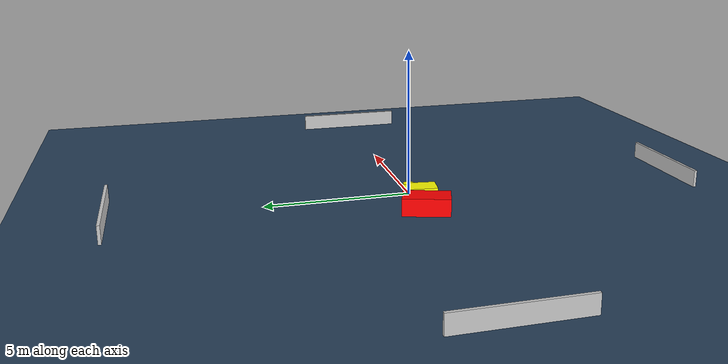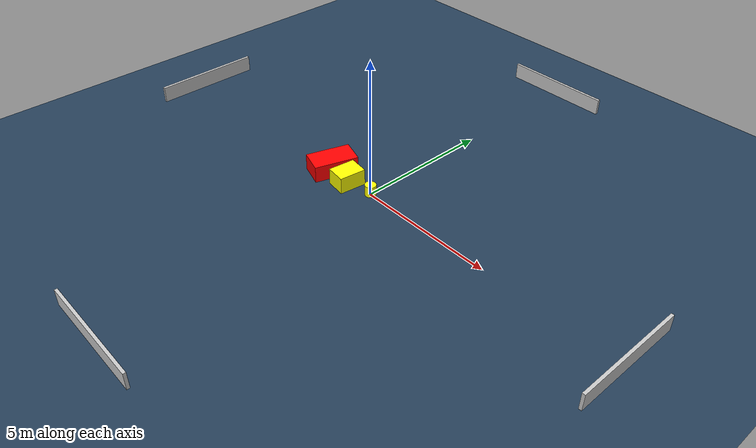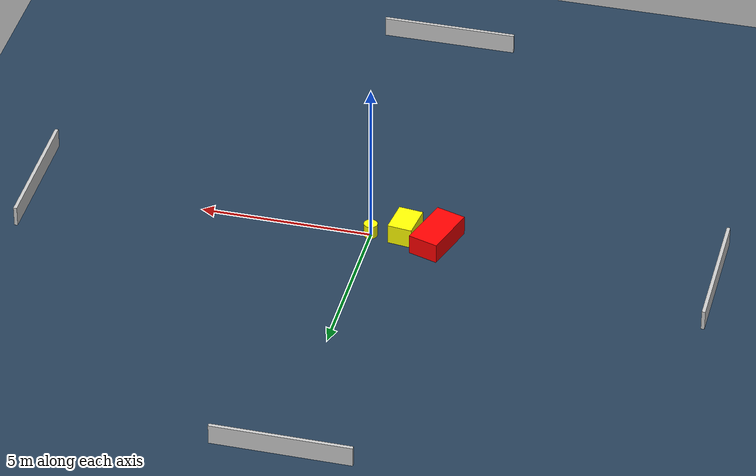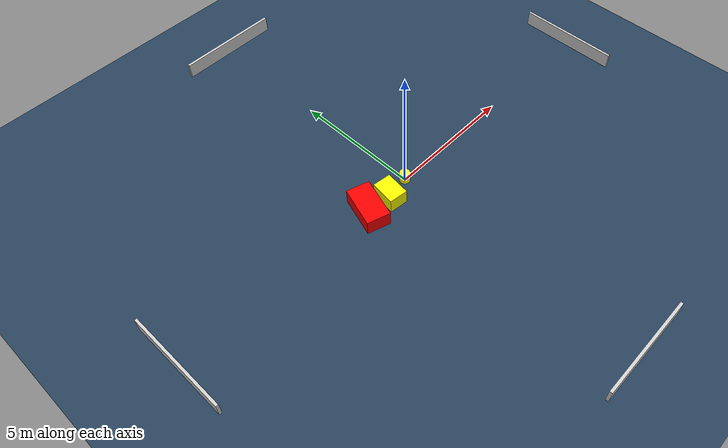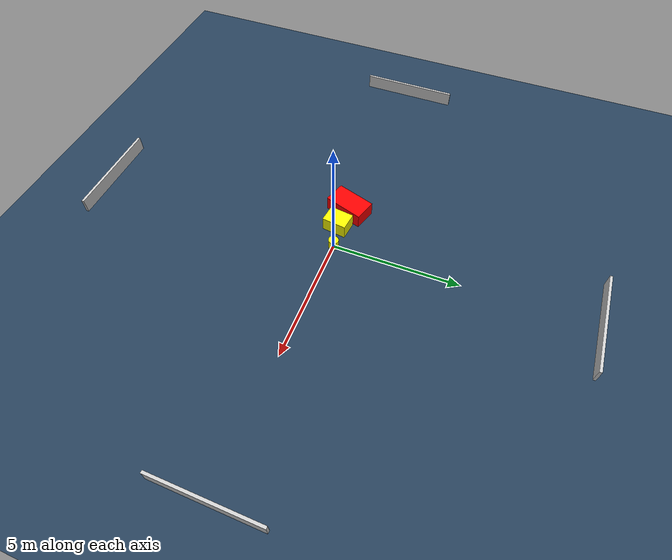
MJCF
<?xml version="1.0" ?>
<mujoco model="generated_environment">
  <option timestep="0.01" integrator="RK4" cone="elliptic"/>
  <default>
    <geom density="1"/>
  </default>
  <asset>
    <texture builtin="gradient" height="3072" name="skybox" rgb1="0.3 0.5 0.7" rgb2="0 0 0" type="skybox" width="512"/>
    <texture builtin="checker" height="300" name="groundplane" rgb1="0.2 0.3 0.4" rgb2="0.1 0.2 0.3" type="2d" width="300"/>
    <material name="groundplane" reflectance="0.2" texrepeat="5 5" texture="groundplane"/>
  </asset>
  <worldbody>
    <light dir="0 0 -1" directional="true" pos="0 0 1.5"/>
    <geom condim="3" friction="0.5 0.005 0.001" material="groundplane" name="floor" pos="0 0 0" size="0 0 0.05" type="plane"/>
    <body name="walls">
      <geom name="wall_1" condim="4" pos="-10.0 0.0 0.3" rgba="0.800000011920929 0.800000011920929 0.800000011920929 1.0" size="0.05 2.0 0.3" type="box"/>
      <geom name="wall_2" condim="4" pos="10.0 0.0 0.3" rgba="0.800000011920929 0.800000011920929 0.800000011920929 1.0" size="0.05 2.0 0.3" type="box"/>
      <geom name="wall_3" condim="4" pos="0.0 -10.0 0.3" rgba="0.800000011920929 0.800000011920929 0.800000011920929 1.0" size="2.0 0.05 0.3" type="box"/>
      <geom name="wall_4" condim="4" pos="0.0 10.0 0.3" rgba="0.800000011920929 0.800000011920929 0.800000011920929 1.0" size="2.0 0.05 0.3" type="box"/>
    </body>
    <body name="robot">
      <joint name="joint_x" type="slide" pos="0 0 0" axis="1 0 0"/>
      <joint name="joint_y" type="slide" pos="0 0 0" axis="0 1 0"/>
      <geom name="robot" type="cylinder" pos="0.0 0.0 0.2" size="0.2 0.2 0.0" mass="5.0" friction="1.0 0.005 0.0001" condim="4" rgba="1.0 1.0 0.0 1.0"/>
    </body>
    <body name="obstacle_1_movable">
      <geom name="obstacle_1_movable" condim="4" pos="-0.9702283586568361 -0.19639650951148516 0.3" euler="0 0 352.90356917778814" friction="0.0 0.005 0.001" rgba="1.0 1.0 0.0 1.0" size="0.35923474401885097 0.48194494538954397 0.3" type="box" mass="0.1"/>
      <joint type="free"/>
    </body>
    <body name="obstacle_2_static">
      <geom name="obstacle_2_static" condim="4" pos="-1.9281064777630414 -0.06419368742012332 0.3" euler="0 0 342.313423225849" friction="0.0 0.005 0.001" rgba="1.0 0.0 0.0 1.0" size="0.4462277211050296 0.7936988447171469 0.3" type="box"/>
    </body>
  </worldbody>
  <actuator>
    <motor name="actuator_x" joint="joint_x" gear="1" ctrlrange="-1 1"/>
    <motor name="actuator_y" joint="joint_y" gear="1" ctrlrange="-1 1"/>
  </actuator>
</mujoco>
